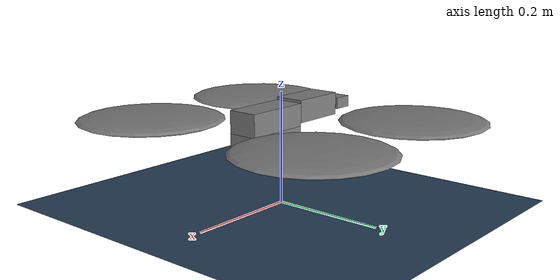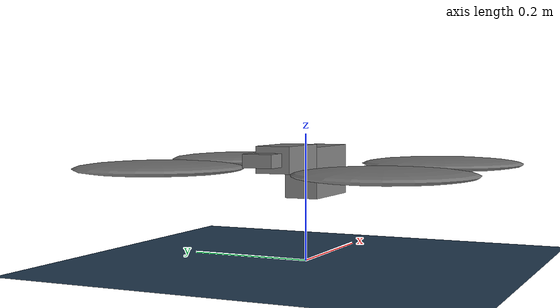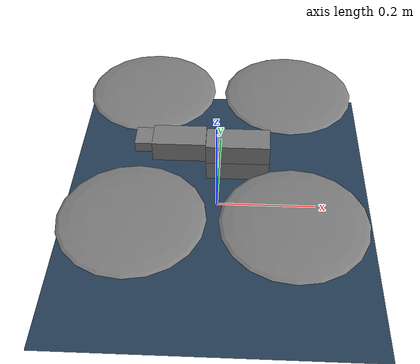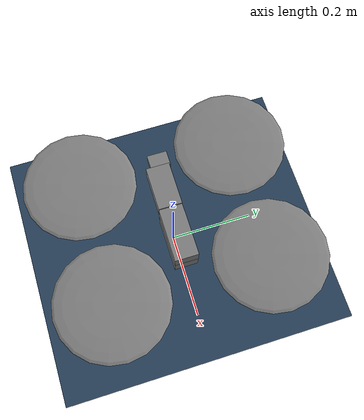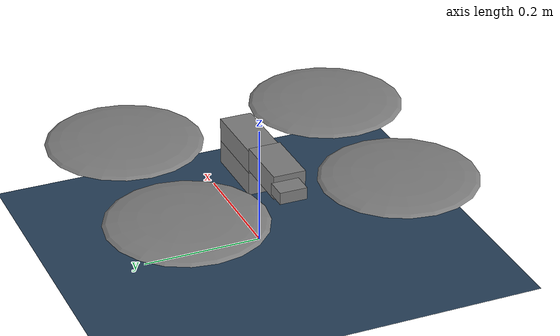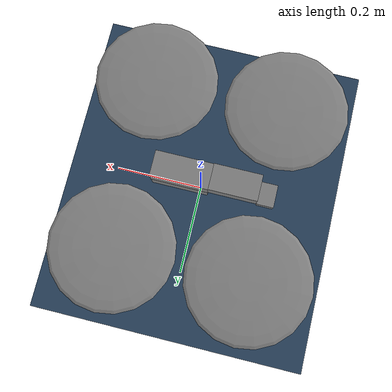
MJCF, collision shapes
<mujoco model="Skydio X2 scene">
  <include file="x2.xml"/>

  <!-- Only add absolutely necessary new elements -->
  <option
    gravity="0 0 -9.81"
    density="1.225"
    viscosity="1.8e-5"
    timestep="0.01"
    iterations="50"
    tolerance="1e-10"
    solver="Newton"/>

  <size memory="50M"/>

  <statistic center="0 0 0.1" extent="0.6" meansize=".05"/>

  <visual>
    <headlight diffuse="0.6 0.6 0.6" ambient="0.3 0.3 0.3" specular="0 0 0"/>
    <rgba haze="0.15 0.25 0.35 1"/>
    <global azimuth="-20" elevation="-20" />
    <!--  THE PROBLEM IN SCENE_X2.XML:-->
          <!-- global ..... ellipsoidinertia="true" -->  </visual>

  <asset>
    <texture name="groundplane_tex" type="2d" builtin="checker" width="512" height="512" rgb1=".1 .2 .3" rgb2=".2 .3 .4"/>
    <material name="groundplane" texture="groundplane_tex" texrepeat="1 1" texuniform="true" reflectance=".2"/>

    <texture name="grid" type="2d" builtin="checker" width="512" height="512" rgb1=".1 .2 .3" rgb2=".2 .3 .4"/>
    <material name="grid" texture="grid" texrepeat="1 1" texuniform="true" reflectance=".2"/>
  </asset>

  <worldbody>
    <light pos="0 0 1.5" dir="0 0 -1" directional="true"/>
    <geom name="floor" size="0 0 0.05" type="plane" material="grid"/>
  </worldbody>

</mujoco>

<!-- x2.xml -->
<mujoco model="Skydio X2">
  <compiler autolimits="true" assetdir="assets"/>

  <option density="1.225" viscosity="1.8e-5"/>

  <default>
    <default class="x2">
      <geom mass="0"/>
      <motor ctrlrange="0 13"/>
      <mesh scale="0.01 0.01 0.01"/>
      <default class="visual">
        <geom group="2" type="mesh" contype="0" conaffinity="0"/>
      </default>
      <default class="collision">
        <geom group="3" type="box"/>
        <default class="rotor">
          <geom type="ellipsoid" size=".13 .13 .01"/>
        </default>
      </default>
      <site group="5"/>
    </default>
  </default>

  <asset>
    <texture type="2d" file="X2_lowpoly_texture_SpinningProps_1024.png"/>
    <material name="phong3SG" texture="X2_lowpoly_texture_SpinningProps_1024"/>
    <material name="invisible" rgba="0 0 0 0"/>
    <mesh class="x2" file="X2_lowpoly.obj"/>
  </asset>

  <worldbody>
    <light name="spotlight" mode="targetbodycom" target="x2" pos="0 -1 2"/>
    <body name="x2" pos="0 0 0.1" childclass="x2">
      <freejoint/>
      <camera name="track" pos="-1 0 .5" xyaxes="0 -1 0 1 0 2" mode="trackcom"/>
      <site name="imu" pos="0 0 .02"/>
      <geom material="phong3SG" mesh="X2_lowpoly" class="visual" quat="0 0 1 1"/>
      <geom class="collision" size=".06 .027 .02" pos=".04 0 .02"/>
      <geom class="collision" size=".06 .027 .02" pos=".04 0 .06"/>
      <geom class="collision" size=".05 .027 .02" pos="-.07 0 .065"/>
      <geom class="collision" size=".023 .017 .01" pos="-.137 .008 .065" quat="1 0 0 1"/>
      <geom name="rotor1" class="rotor" pos="-.14 -.18 .05" mass=".25"/>
      <geom name="rotor2" class="rotor" pos="-.14 .18 .05" mass=".25"/>
      <geom name="rotor3" class="rotor" pos=".14 .18 .05" mass=".25"/>
      <geom name="rotor4" class="rotor" pos=".14 -.18 .05" mass=".25"/>
      <geom size=".16 .04 .02" pos="0 0 0.02" type="ellipsoid" mass=".325" class="visual" material="invisible"/>
      <site name="thrust1" pos="-.14 -.18 .05"/>
      <site name="thrust2" pos="-.14 .18 .05"/>
      <site name="thrust3" pos=".14 .18 .05"/>
      <site name="thrust4" pos=".14 -.18 .05"/>
    </body>
  </worldbody>

  <actuator>
    <motor class="x2" name="thrust1" site="thrust1" gear="0 0 1 0 0 -.0201"/>
    <motor class="x2" name="thrust2" site="thrust2" gear="0 0 1 0 0  .0201"/>
    <motor class="x2" name="thrust3" site="thrust3" gear="0 0 1 0 0  .0201"/>
    <motor class="x2" name="thrust4" site="thrust4" gear="0 0 1 0 0 -.0201"/>
  </actuator>

  <sensor>
    <gyro name="body_gyro" site="imu"/>
    <accelerometer name="body_linacc" site="imu"/>
    <framequat name="body_quat" objtype="site" objname="imu"/>
  </sensor>

  <keyframe>
    <key name="hover" qpos="0 0 .3 1 0 0 0" ctrl="3.2495625 3.2495625 3.2495625 3.2495625"/>
  </keyframe>

</mujoco>
